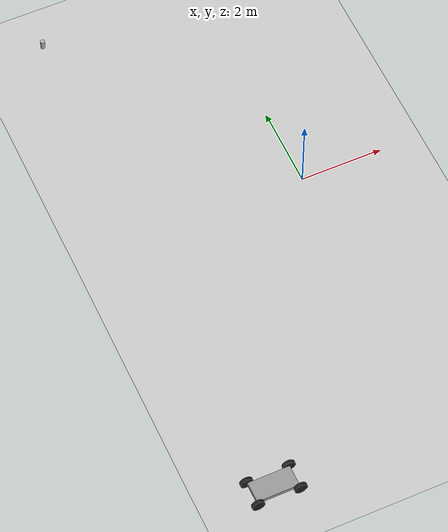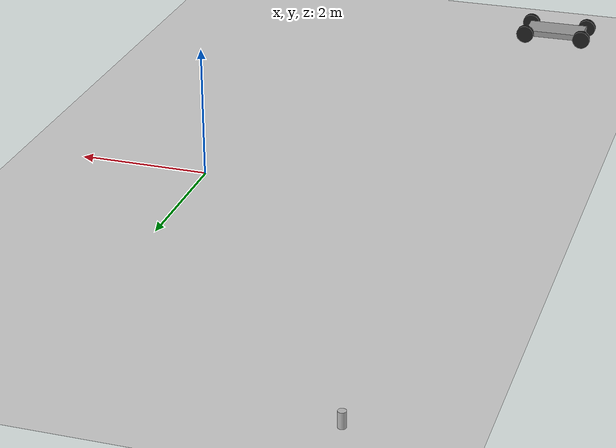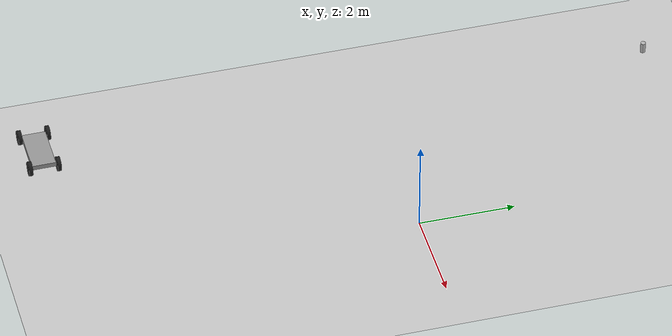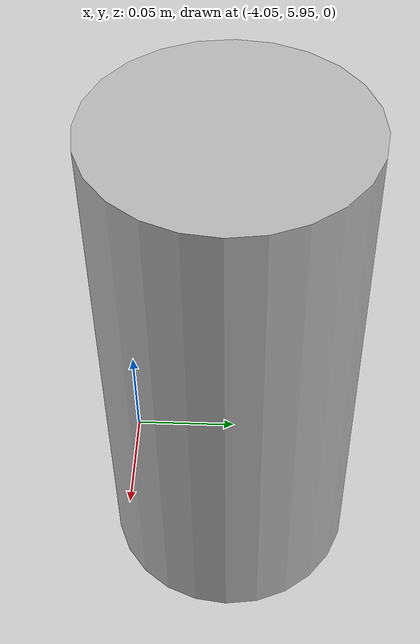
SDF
<sdf version="1.4">
 <world name="default">
  <light name="sun" type="directional">
   <pose>0 0 10 0 -0 0</pose>
   <diffuse>0.8 0.8 0.8 1</diffuse>
   <specular>0.2 0.2 0.2 1</specular>
   <attenuation>
    <range>1000</range>
    <constant>0.9</constant>
    <linear>0.01</linear>
    <quadratic>0.001</quadratic>
   </attenuation>
   <direction>-0.5 0.1 -0.9</direction>
  </light>
  <model name="ground_plane">
   <static>1</static>
   <link name="link">
    <collision name="collision">
     <geometry><plane><normal>0 0 1</normal><size>100 100</size></plane></geometry>
     <surface><friction><ode><mu>100</mu><mu2>50</mu2></ode></friction></surface>
    </collision>
    <visual name="visual">
     <cast_shadows>0</cast_shadows>
     <geometry><plane><normal>0 0 1</normal><size>100 100</size></plane></geometry>
     <material>
      <script><uri>file://media/materials/scripts/gazebo.material</uri><name>Gazebo/Grey</name></script>
     </material>
    </visual>
    <velocity_decay><linear>0</linear><angular>0</angular></velocity_decay>
   </link>
  </model>
  <physics type="ode">
   <max_step_size>0.001</max_step_size>
   <real_time_factor>1</real_time_factor>
   <real_time_update_rate>1000</real_time_update_rate>
   <gravity>0 0 -9.8</gravity>
  </physics>
  <scene><ambient>0.4 0.4 0.4 1</ambient><background>0.7 0.7 0.7 1</background><shadows>1</shadows></scene>
  <spherical_coordinates>
   <surface_model>EARTH_WGS84</surface_model>
   <latitude_deg>0</latitude_deg>
   <longitude_deg>0</longitude_deg>
   <elevation>0</elevation>
   <heading_deg>0</heading_deg>
  </spherical_coordinates>
  <model name="beer">
   <link name="link">
    <pose>0 0 0.115 0 -0 0</pose>
    <inertial>
     <mass>0.39</mass>
     <inertia><ixx>0.00058</ixx><ixy>0</ixy><ixz>0</ixz><iyy>0.00058</iyy><iyz>0</iyz><izz>0.00019</izz></inertia>
    </inertial>
    <collision name="collision">
     <geometry><cylinder><radius>0.055</radius><length>0.23</length></cylinder></geometry>
    </collision>
    <visual name="visual">
     <geometry><cylinder><radius>0.055</radius><length>0.23</length></cylinder></geometry>
     <material>
      <script>
       <uri>model://beer/materials/scripts</uri>
       <uri>model://beer/materials/textures</uri>
       <name>Beer/Diffuse</name>
      </script>
     </material>
    </visual>
    <velocity_decay><linear>0</linear><angular>0</angular></velocity_decay>
   </link>
   <pose>-4 6 -7e-06 -0 -0 -4e-06</pose>
   <static>0</static>
  </model>
  <model name="cart_rigid_suspension">
   <link name="chassis">
    <pose>0 0 0.15 0 -0 0</pose>
    <inertial>
     <pose>0.1 0 0 0 -0 0</pose>
     <mass>10</mass>
     <inertia>
      <ixx>0.216667</ixx>
      <iyy>0.841667</iyy>
      <izz>1.04167</izz>
      <ixy>0</ixy>
      <ixz>0</ixz>
      <iyz>0</iyz>
     </inertia>
    </inertial>
    <collision name="collision"><geometry><box><size>1 0.5 0.1</size></box></geometry></collision>
    <visual name="visual">
     <geometry><box><size>1 0.5 0.1</size></box></geometry>
     <material>
      <script><uri>file://media/materials/scripts/gazebo.material</uri><name>Gazebo/Grey</name></script>
     </material>
    </visual>
    <velocity_decay><linear>0</linear><angular>0</angular></velocity_decay>
   </link>
   <link name="wheel_front_left">
    <pose>0.5 0.298 0.15 -1.5708 0 0</pose>
    <inertial>
     <mass>0.5</mass>
     <inertia>
      <ixx>0.00307917</ixx>
      <iyy>0.00307917</iyy>
      <izz>0.005625</izz>
      <ixy>0</ixy>
      <ixz>0</ixz>
      <iyz>0</iyz>
     </inertia>
    </inertial>
    <collision name="collision">
     <geometry><cylinder><radius>0.15</radius><length>0.08</length></cylinder></geometry>
    </collision>
    <visual name="visual">
     <geometry><cylinder><radius>0.15</radius><length>0.08</length></cylinder></geometry>
     <material>
      <script><uri>file://media/materials/scripts/gazebo.material</uri><name>Gazebo/Black</name></script>
     </material>
    </visual>
    <velocity_decay><linear>0</linear><angular>0</angular></velocity_decay>
   </link>
   <joint name="wheel_front_left_spin" type="revolute">
    <parent>chassis</parent>
    <child>wheel_front_left</child>
    <axis><xyz>0 0 1</xyz><limit><lower>-1e+16</lower><upper>1e+16</upper></limit></axis>
   </joint>
   <link name="wheel_front_right">
    <pose>0.5 -0.298 0.15 -1.5708 0 0</pose>
    <inertial>
     <mass>0.5</mass>
     <inertia>
      <ixx>0.00307917</ixx>
      <iyy>0.00307917</iyy>
      <izz>0.005625</izz>
      <ixy>0</ixy>
      <ixz>0</ixz>
      <iyz>0</iyz>
     </inertia>
    </inertial>
    <collision name="collision">
     <geometry><cylinder><radius>0.15</radius><length>0.08</length></cylinder></geometry>
    </collision>
    <visual name="visual">
     <geometry><cylinder><radius>0.15</radius><length>0.08</length></cylinder></geometry>
     <material>
      <script><uri>file://media/materials/scripts/gazebo.material</uri><name>Gazebo/Black</name></script>
     </material>
    </visual>
    <velocity_decay><linear>0</linear><angular>0</angular></velocity_decay>
   </link>
   <joint name="wheel_front_right_spin" type="revolute">
    <parent>chassis</parent>
    <child>wheel_front_right</child>
    <axis><xyz>0 0 1</xyz><limit><lower>-1e+16</lower><upper>1e+16</upper></limit></axis>
   </joint>
   <link name="wheel_rear_left">
    <pose>-0.5 0.298 0.15 -1.5708 0 0</pose>
    <inertial>
     <mass>0.5</mass>
     <inertia>
      <ixx>0.00307917</ixx>
      <iyy>0.00307917</iyy>
      <izz>0.005625</izz>
      <ixy>0</ixy>
      <ixz>0</ixz>
      <iyz>0</iyz>
     </inertia>
    </inertial>
    <collision name="collision">
     <geometry><cylinder><radius>0.15</radius><length>0.08</length></cylinder></geometry>
    </collision>
    <visual name="visual">
     <geometry><cylinder><radius>0.15</radius><length>0.08</length></cylinder></geometry>
     <material>
      <script><uri>file://media/materials/scripts/gazebo.material</uri><name>Gazebo/Black</name></script>
     </material>
    </visual>
    <velocity_decay><linear>0</linear><angular>0</angular></velocity_decay>
   </link>
   <joint name="wheel_rear_left_spin" type="revolute">
    <parent>chassis</parent>
    <child>wheel_rear_left</child>
    <axis><xyz>0 0 1</xyz><limit><lower>-1e+16</lower><upper>1e+16</upper></limit></axis>
   </joint>
   <link name="wheel_rear_right">
    <pose>-0.5 -0.298 0.15 -1.5708 0 0</pose>
    <inertial>
     <mass>0.5</mass>
     <inertia>
      <ixx>0.00307917</ixx>
      <iyy>0.00307917</iyy>
      <izz>0.005625</izz>
      <ixy>0</ixy>
      <ixz>0</ixz>
      <iyz>0</iyz>
     </inertia>
    </inertial>
    <collision name="collision">
     <geometry><cylinder><radius>0.15</radius><length>0.08</length></cylinder></geometry>
    </collision>
    <visual name="visual">
     <geometry><cylinder><radius>0.15</radius><length>0.08</length></cylinder></geometry>
     <material>
      <script><uri>file://media/materials/scripts/gazebo.material</uri><name>Gazebo/Black</name></script>
     </material>
    </visual>
    <velocity_decay><linear>0</linear><angular>0</angular></velocity_decay>
   </link>
   <joint name="wheel_rear_right_spin" type="revolute">
    <parent>chassis</parent>
    <child>wheel_rear_right</child>
    <axis><xyz>0 0 1</xyz><limit><lower>-1e+16</lower><upper>1e+16</upper></limit></axis>
   </joint>
   <pose>-3.99631 -7.00501 1e-06 1e-06 -0 0.006255</pose>
   <static>0</static>
  </model>
 </world>
</sdf>
